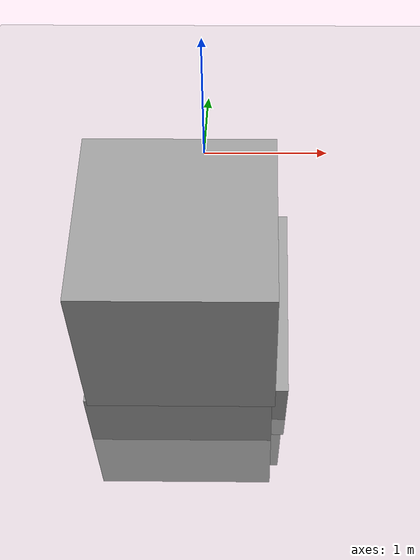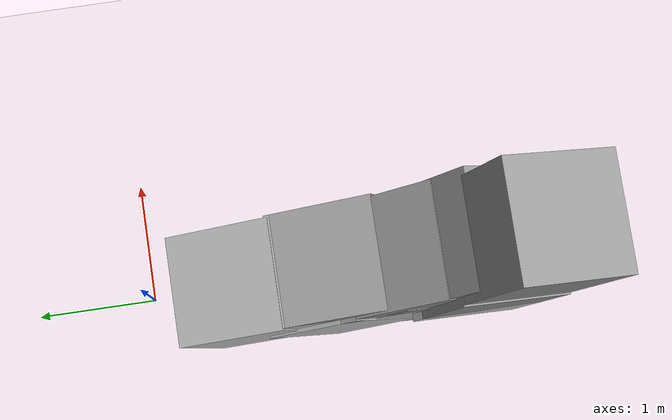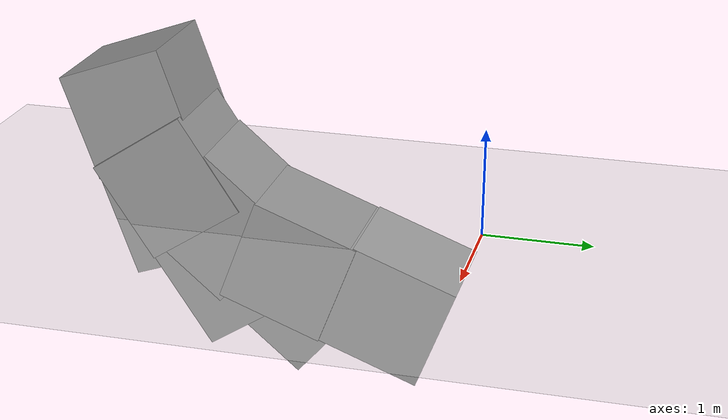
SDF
<sdf version="1.7">
 <world name="default">
  <light name="sun" type="directional">
   <pose>0 0 10 0 -0 0</pose>
   <diffuse>0.8 0.8 0.8 1</diffuse>
   <specular>0.2 0.2 0.2 1</specular>
   <attenuation>
    <range>1000</range>
    <constant>0.9</constant>
    <linear>0.01</linear>
    <quadratic>0.001</quadratic>
   </attenuation>
   <direction>-0.5 0.1 -0.9</direction>
   <spot><inner_angle>0</inner_angle><outer_angle>0</outer_angle><falloff>0</falloff></spot>
  </light>
  <model name="ground_plane">
   <static>1</static>
   <link name="link">
    <collision name="collision">
     <geometry><plane><normal>0 0 1</normal><size>100 100</size></plane></geometry>
     <surface>
      <contact><collide_bitmask>65535</collide_bitmask></contact>
      <friction><ode><mu>100</mu><mu2>50</mu2></ode></friction>
     </surface>
    </collision>
    <visual name="visual">
     <cast_shadows>0</cast_shadows>
     <geometry><plane><normal>0 0 1</normal><size>100 100</size></plane></geometry>
     <material>
      <script><uri>file://media/materials/scripts/gazebo.material</uri><name>Gazebo/Grey</name></script>
     </material>
    </visual>
   </link>
  </model>
  <gravity>0 0 -9.8</gravity>
  <magnetic_field>6e-06 2.3e-05 -4.2e-05</magnetic_field>
  <atmosphere type="adiabatic"/>
  <physics type="ode">
   <max_step_size>0.001</max_step_size>
   <real_time_factor>1</real_time_factor>
   <real_time_update_rate>1000</real_time_update_rate>
  </physics>
  <scene><ambient>0.4 0.4 0.4 1</ambient><background>0.7 0.7 0.7 1</background><shadows>1</shadows></scene>
  <spherical_coordinates>
   <surface_model>EARTH_WGS84</surface_model>
   <latitude_deg>0</latitude_deg>
   <longitude_deg>0</longitude_deg>
   <elevation>0</elevation>
   <heading_deg>0</heading_deg>
  </spherical_coordinates>
  <model name="bad_ramp">
   <link name="link">
    <inertial>
     <mass>1</mass>
     <inertia>
      <ixx>0.166667</ixx>
      <ixy>0</ixy>
      <ixz>0</ixz>
      <iyy>0.166667</iyy>
      <iyz>0</iyz>
      <izz>0.166667</izz>
     </inertia>
    </inertial>
    <pose>-0.151199 -0.123201 -0.765799 -0.419049 0 0</pose>
    <visual name="visual">
     <geometry><box><size>1 1 1</size></box></geometry>
     <material>
      <script><name>Gazebo/Grey</name><uri>file://media/materials/scripts/gazebo.material</uri></script>
      <shader type="pixel"/>
     </material>
    </visual>
    <collision name="collision">
     <geometry><box><size>1 1 1</size></box></geometry>
     <surface>
      <friction>
       <ode><mu>1</mu><mu2>1</mu2><fdir1>0 0 0</fdir1><slip1>0</slip1><slip2>0</slip2></ode>
       <torsional>
        <coefficient>1</coefficient>
        <patch_radius>0</patch_radius>
        <surface_radius>0</surface_radius>
        <use_patch_radius>1</use_patch_radius>
        <ode><slip>0</slip></ode>
       </torsional>
      </friction>
      <bounce><restitution_coefficient>0</restitution_coefficient><threshold>1e+06</threshold></bounce>
      <contact>
       <collide_without_contact>0</collide_without_contact>
       <collide_without_contact_bitmask>1</collide_without_contact_bitmask>
       <collide_bitmask>1</collide_bitmask>
       <ode>
        <soft_cfm>0</soft_cfm>
        <soft_erp>0.2</soft_erp>
        <kp>1e+13</kp>
        <kd>1</kd>
        <max_vel>0.01</max_vel>
        <min_depth>0</min_depth>
       </ode>
       <bullet>
        <split_impulse>1</split_impulse>
        <split_impulse_penetration_threshold>-0.01</split_impulse_penetration_threshold>
        <soft_cfm>0</soft_cfm>
        <soft_erp>0.2</soft_erp>
        <kp>1e+13</kp>
        <kd>1</kd>
       </bullet>
      </contact>
     </surface>
    </collision>
   </link>
   <link name="link_clone">
    <inertial>
     <mass>1</mass>
     <inertia>
      <ixx>0.166667</ixx>
      <ixy>0</ixy>
      <ixz>0</ixz>
      <iyy>0.166667</iyy>
      <iyz>0</iyz>
      <izz>0.166667</izz>
     </inertia>
    </inertial>
    <pose>-0.134892 -1.00684 -0.376837 -0.419059 0 0</pose>
    <visual name="visual">
     <geometry><box><size>1 1 1</size></box></geometry>
     <material>
      <script><name>Gazebo/Grey</name><uri>file://media/materials/scripts/gazebo.material</uri></script>
      <shader type="pixel"/>
     </material>
    </visual>
    <collision name="collision">
     <geometry><box><size>1 1 1</size></box></geometry>
     <surface>
      <friction>
       <ode><mu>1</mu><mu2>1</mu2><fdir1>0 0 0</fdir1><slip1>0</slip1><slip2>0</slip2></ode>
       <torsional>
        <coefficient>1</coefficient>
        <patch_radius>0</patch_radius>
        <surface_radius>0</surface_radius>
        <use_patch_radius>1</use_patch_radius>
        <ode><slip>0</slip></ode>
       </torsional>
      </friction>
      <bounce><restitution_coefficient>0</restitution_coefficient><threshold>1e+06</threshold></bounce>
      <contact>
       <collide_without_contact>0</collide_without_contact>
       <collide_without_contact_bitmask>1</collide_without_contact_bitmask>
       <collide_bitmask>1</collide_bitmask>
       <ode>
        <soft_cfm>0</soft_cfm>
        <soft_erp>0.2</soft_erp>
        <kp>1e+13</kp>
        <kd>1</kd>
        <max_vel>0.01</max_vel>
        <min_depth>0</min_depth>
       </ode>
       <bullet>
        <split_impulse>1</split_impulse>
        <split_impulse_penetration_threshold>-0.01</split_impulse_penetration_threshold>
        <soft_cfm>0</soft_cfm>
        <soft_erp>0.2</soft_erp>
        <kp>1e+13</kp>
        <kd>1</kd>
       </bullet>
      </contact>
     </surface>
    </collision>
   </link>
   <static>1</static>
   <pose>0.220385 -1.28794 0.09795 -0.287968 0 0</pose>
  </model>
  <model name="bad_ramp_clone">
   <link name="link">
    <inertial>
     <mass>1</mass>
     <inertia>
      <ixx>0.166667</ixx>
      <ixy>0</ixy>
      <ixz>0</ixz>
      <iyy>0.166667</iyy>
      <iyz>0</iyz>
      <izz>0.166667</izz>
     </inertia>
    </inertial>
    <pose>-0.151199 -0.123201 -0.765799 -0.419049 0 0</pose>
    <visual name="visual">
     <geometry><box><size>1 1 1</size></box></geometry>
     <material>
      <script><name>Gazebo/Grey</name><uri>file://media/materials/scripts/gazebo.material</uri></script>
      <shader type="pixel"/>
     </material>
    </visual>
    <collision name="collision">
     <geometry><box><size>1 1 1</size></box></geometry>
     <surface>
      <friction>
       <ode><mu>1</mu><mu2>1</mu2><fdir1>0 0 0</fdir1><slip1>0</slip1><slip2>0</slip2></ode>
       <torsional>
        <coefficient>1</coefficient>
        <patch_radius>0</patch_radius>
        <surface_radius>0</surface_radius>
        <use_patch_radius>1</use_patch_radius>
        <ode><slip>0</slip></ode>
       </torsional>
      </friction>
      <bounce><restitution_coefficient>0</restitution_coefficient><threshold>1e+06</threshold></bounce>
      <contact>
       <collide_without_contact>0</collide_without_contact>
       <collide_without_contact_bitmask>1</collide_without_contact_bitmask>
       <collide_bitmask>1</collide_bitmask>
       <ode>
        <soft_cfm>0</soft_cfm>
        <soft_erp>0.2</soft_erp>
        <kp>1e+13</kp>
        <kd>1</kd>
        <max_vel>0.01</max_vel>
        <min_depth>0</min_depth>
       </ode>
       <bullet>
        <split_impulse>1</split_impulse>
        <split_impulse_penetration_threshold>-0.01</split_impulse_penetration_threshold>
        <soft_cfm>0</soft_cfm>
        <soft_erp>0.2</soft_erp>
        <kp>1e+13</kp>
        <kd>1</kd>
       </bullet>
      </contact>
     </surface>
    </collision>
   </link>
   <link name="link_clone">
    <inertial>
     <mass>1</mass>
     <inertia>
      <ixx>0.166667</ixx>
      <ixy>0</ixy>
      <ixz>0</ixz>
      <iyy>0.166667</iyy>
      <iyz>0</iyz>
      <izz>0.166667</izz>
     </inertia>
    </inertial>
    <pose>-0.134892 -1.00684 -0.376837 -0.419059 0 0</pose>
    <visual name="visual">
     <geometry><box><size>1 1 1</size></box></geometry>
     <material>
      <script><name>Gazebo/Grey</name><uri>file://media/materials/scripts/gazebo.material</uri></script>
      <shader type="pixel"/>
     </material>
    </visual>
    <collision name="collision">
     <geometry><box><size>1 1 1</size></box></geometry>
     <surface>
      <friction>
       <ode><mu>1</mu><mu2>1</mu2><fdir1>0 0 0</fdir1><slip1>0</slip1><slip2>0</slip2></ode>
       <torsional>
        <coefficient>1</coefficient>
        <patch_radius>0</patch_radius>
        <surface_radius>0</surface_radius>
        <use_patch_radius>1</use_patch_radius>
        <ode><slip>0</slip></ode>
       </torsional>
      </friction>
      <bounce><restitution_coefficient>0</restitution_coefficient><threshold>1e+06</threshold></bounce>
      <contact>
       <collide_without_contact>0</collide_without_contact>
       <collide_without_contact_bitmask>1</collide_without_contact_bitmask>
       <collide_bitmask>1</collide_bitmask>
       <ode>
        <soft_cfm>0</soft_cfm>
        <soft_erp>0.2</soft_erp>
        <kp>1e+13</kp>
        <kd>1</kd>
        <max_vel>0.01</max_vel>
        <min_depth>0</min_depth>
       </ode>
       <bullet>
        <split_impulse>1</split_impulse>
        <split_impulse_penetration_threshold>-0.01</split_impulse_penetration_threshold>
        <soft_cfm>0</soft_cfm>
        <soft_erp>0.2</soft_erp>
        <kp>1e+13</kp>
        <kd>1</kd>
       </bullet>
      </contact>
     </surface>
    </collision>
   </link>
   <static>1</static>
   <pose>0.240738 -0.677465 0.119659 0.059004 -0 0</pose>
  </model>
  <model name="bad_ramp_clone_0">
   <link name="link">
    <inertial>
     <mass>1</mass>
     <inertia>
      <ixx>0.166667</ixx>
      <ixy>0</ixy>
      <ixz>0</ixz>
      <iyy>0.166667</iyy>
      <iyz>0</iyz>
      <izz>0.166667</izz>
     </inertia>
    </inertial>
    <pose>-0.151199 -0.123201 -0.765799 -0.419049 0 0</pose>
    <visual name="visual">
     <geometry><box><size>1 1 1</size></box></geometry>
     <material>
      <script><name>Gazebo/Grey</name><uri>file://media/materials/scripts/gazebo.material</uri></script>
      <shader type="pixel"/>
     </material>
    </visual>
    <collision name="collision">
     <geometry><box><size>1 1 1</size></box></geometry>
     <surface>
      <friction>
       <ode><mu>1</mu><mu2>1</mu2><fdir1>0 0 0</fdir1><slip1>0</slip1><slip2>0</slip2></ode>
       <torsional>
        <coefficient>1</coefficient>
        <patch_radius>0</patch_radius>
        <surface_radius>0</surface_radius>
        <use_patch_radius>1</use_patch_radius>
        <ode><slip>0</slip></ode>
       </torsional>
      </friction>
      <bounce><restitution_coefficient>0</restitution_coefficient><threshold>1e+06</threshold></bounce>
      <contact>
       <collide_without_contact>0</collide_without_contact>
       <collide_without_contact_bitmask>1</collide_without_contact_bitmask>
       <collide_bitmask>1</collide_bitmask>
       <ode>
        <soft_cfm>0</soft_cfm>
        <soft_erp>0.2</soft_erp>
        <kp>1e+13</kp>
        <kd>1</kd>
        <max_vel>0.01</max_vel>
        <min_depth>0</min_depth>
       </ode>
       <bullet>
        <split_impulse>1</split_impulse>
        <split_impulse_penetration_threshold>-0.01</split_impulse_penetration_threshold>
        <soft_cfm>0</soft_cfm>
        <soft_erp>0.2</soft_erp>
        <kp>1e+13</kp>
        <kd>1</kd>
       </bullet>
      </contact>
     </surface>
    </collision>
   </link>
   <link name="link_clone">
    <inertial>
     <mass>1</mass>
     <inertia>
      <ixx>0.166667</ixx>
      <ixy>0</ixy>
      <ixz>0</ixz>
      <iyy>0.166667</iyy>
      <iyz>0</iyz>
      <izz>0.166667</izz>
     </inertia>
    </inertial>
    <pose>-0.134892 -1.00684 -0.376837 -0.419059 0 0</pose>
    <visual name="visual">
     <geometry><box><size>1 1 1</size></box></geometry>
     <material>
      <script><name>Gazebo/Grey</name><uri>file://media/materials/scripts/gazebo.material</uri></script>
      <shader type="pixel"/>
     </material>
    </visual>
    <collision name="collision">
     <geometry><box><size>1 1 1</size></box></geometry>
     <surface>
      <friction>
       <ode><mu>1</mu><mu2>1</mu2><fdir1>0 0 0</fdir1><slip1>0</slip1><slip2>0</slip2></ode>
       <torsional>
        <coefficient>1</coefficient>
        <patch_radius>0</patch_radius>
        <surface_radius>0</surface_radius>
        <use_patch_radius>1</use_patch_radius>
        <ode><slip>0</slip></ode>
       </torsional>
      </friction>
      <bounce><restitution_coefficient>0</restitution_coefficient><threshold>1e+06</threshold></bounce>
      <contact>
       <collide_without_contact>0</collide_without_contact>
       <collide_without_contact_bitmask>1</collide_without_contact_bitmask>
       <collide_bitmask>1</collide_bitmask>
       <ode>
        <soft_cfm>0</soft_cfm>
        <soft_erp>0.2</soft_erp>
        <kp>1e+13</kp>
        <kd>1</kd>
        <max_vel>0.01</max_vel>
        <min_depth>0</min_depth>
       </ode>
       <bullet>
        <split_impulse>1</split_impulse>
        <split_impulse_penetration_threshold>-0.01</split_impulse_penetration_threshold>
        <soft_cfm>0</soft_cfm>
        <soft_erp>0.2</soft_erp>
        <kp>1e+13</kp>
        <kd>1</kd>
       </bullet>
      </contact>
     </surface>
    </collision>
   </link>
   <static>1</static>
   <pose>0.229522 -1.74204 0.143864 -0.568087 0 0</pose>
  </model>
  <model name="bad_ramp_clone_0_clone">
   <link name="link">
    <inertial>
     <mass>1</mass>
     <inertia>
      <ixx>0.166667</ixx>
      <ixy>0</ixy>
      <ixz>0</ixz>
      <iyy>0.166667</iyy>
      <iyz>0</iyz>
      <izz>0.166667</izz>
     </inertia>
    </inertial>
    <pose>-0.151199 -0.123201 -0.765799 -0.419049 0 0</pose>
    <visual name="visual">
     <geometry><box><size>1 1 1</size></box></geometry>
     <material>
      <script><name>Gazebo/Grey</name><uri>file://media/materials/scripts/gazebo.material</uri></script>
      <shader type="pixel"/>
     </material>
    </visual>
    <collision name="collision">
     <geometry><box><size>1 1 1</size></box></geometry>
     <surface>
      <friction>
       <ode><mu>1</mu><mu2>1</mu2><fdir1>0 0 0</fdir1><slip1>0</slip1><slip2>0</slip2></ode>
       <torsional>
        <coefficient>1</coefficient>
        <patch_radius>0</patch_radius>
        <surface_radius>0</surface_radius>
        <use_patch_radius>1</use_patch_radius>
        <ode><slip>0</slip></ode>
       </torsional>
      </friction>
      <bounce><restitution_coefficient>0</restitution_coefficient><threshold>1e+06</threshold></bounce>
      <contact>
       <collide_without_contact>0</collide_without_contact>
       <collide_without_contact_bitmask>1</collide_without_contact_bitmask>
       <collide_bitmask>1</collide_bitmask>
       <ode>
        <soft_cfm>0</soft_cfm>
        <soft_erp>0.2</soft_erp>
        <kp>1e+13</kp>
        <kd>1</kd>
        <max_vel>0.01</max_vel>
        <min_depth>0</min_depth>
       </ode>
       <bullet>
        <split_impulse>1</split_impulse>
        <split_impulse_penetration_threshold>-0.01</split_impulse_penetration_threshold>
        <soft_cfm>0</soft_cfm>
        <soft_erp>0.2</soft_erp>
        <kp>1e+13</kp>
        <kd>1</kd>
       </bullet>
      </contact>
     </surface>
    </collision>
   </link>
   <link name="link_clone">
    <inertial>
     <mass>1</mass>
     <inertia>
      <ixx>0.166667</ixx>
      <ixy>0</ixy>
      <ixz>0</ixz>
      <iyy>0.166667</iyy>
      <iyz>0</iyz>
      <izz>0.166667</izz>
     </inertia>
    </inertial>
    <pose>-0.134892 -1.00684 -0.376837 -0.419059 0 0</pose>
    <visual name="visual">
     <geometry><box><size>1 1 1</size></box></geometry>
     <material>
      <script><name>Gazebo/Grey</name><uri>file://media/materials/scripts/gazebo.material</uri></script>
      <shader type="pixel"/>
     </material>
    </visual>
    <collision name="collision">
     <geometry><box><size>1 1 1</size></box></geometry>
     <surface>
      <friction>
       <ode><mu>1</mu><mu2>1</mu2><fdir1>0 0 0</fdir1><slip1>0</slip1><slip2>0</slip2></ode>
       <torsional>
        <coefficient>1</coefficient>
        <patch_radius>0</patch_radius>
        <surface_radius>0</surface_radius>
        <use_patch_radius>1</use_patch_radius>
        <ode><slip>0</slip></ode>
       </torsional>
      </friction>
      <bounce><restitution_coefficient>0</restitution_coefficient><threshold>1e+06</threshold></bounce>
      <contact>
       <collide_without_contact>0</collide_without_contact>
       <collide_without_contact_bitmask>1</collide_without_contact_bitmask>
       <collide_bitmask>1</collide_bitmask>
       <ode>
        <soft_cfm>0</soft_cfm>
        <soft_erp>0.2</soft_erp>
        <kp>1e+13</kp>
        <kd>1</kd>
        <max_vel>0.01</max_vel>
        <min_depth>0</min_depth>
       </ode>
       <bullet>
        <split_impulse>1</split_impulse>
        <split_impulse_penetration_threshold>-0.01</split_impulse_penetration_threshold>
        <soft_cfm>0</soft_cfm>
        <soft_erp>0.2</soft_erp>
        <kp>1e+13</kp>
        <kd>1</kd>
       </bullet>
      </contact>
     </surface>
    </collision>
   </link>
   <static>1</static>
   <pose>0.161674 -2.18818 0.546936 -0.809605 0 0</pose>
  </model>
 </world>
</sdf>
